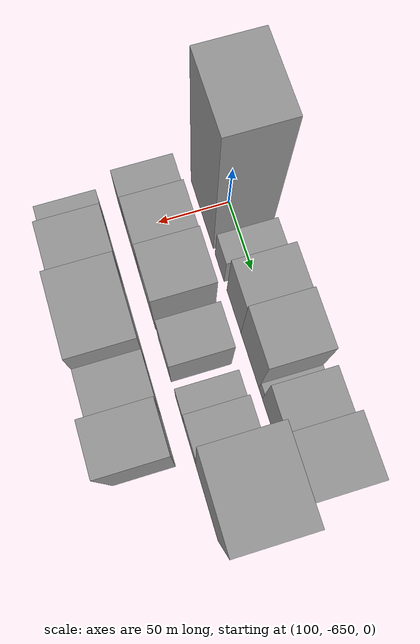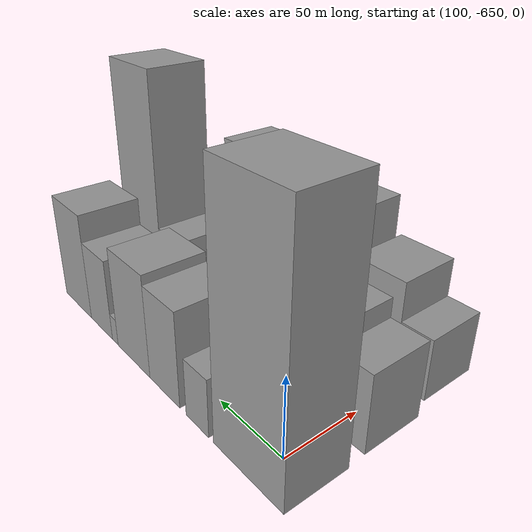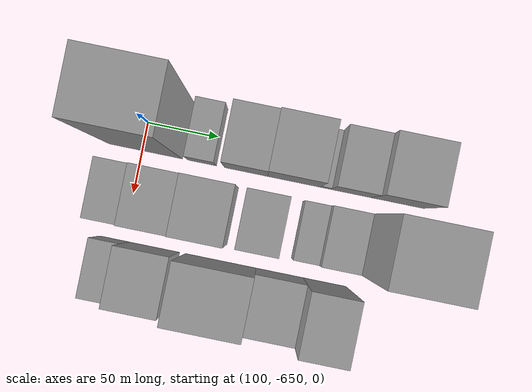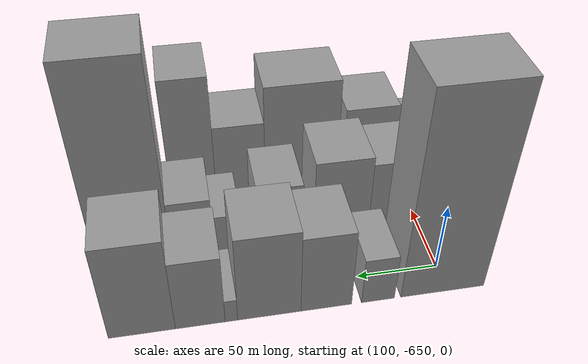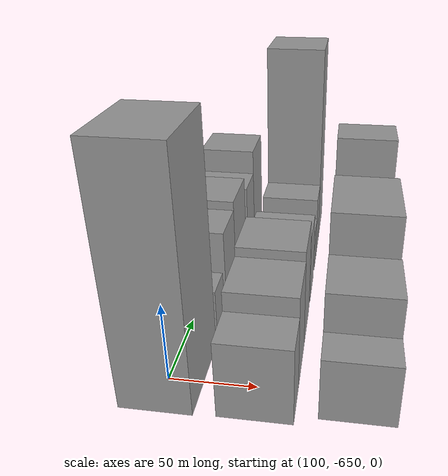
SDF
<sdf version="1.6">
 <world name="default">
  <model name="building_6">
   <static>1</static>
   <pose>100.0000 -647.2399 0 0.000000 0.000000 0.000000</pose>
   <link name="link">
    <pose>0 0 75.00 0 0 0</pose>
    <collision name="collision"><geometry><box><size>40.0000 51.8024 150.0000</size></box></geometry></collision>
    <visual name="visual">
     <cast_shadows>0</cast_shadows>
     <geometry><box><size>40.0000 51.8024 150.0000</size></box></geometry>
     <material>
      <script>
       <uri>model://grey_wall/materials/scripts</uri>
       <uri>model://grey_wall/materials/textures</uri>
       <name>vrc/grey_wall</name>
      </script>
     </material>
    </visual>
   </link>
  </model>
  <model name="building_7">
   <static>1</static>
   <pose>100.0000 -607.3084 0 0.000000 0.000000 0.000000</pose>
   <link name="link">
    <pose>0 0 18.00 0 0 0</pose>
    <collision name="collision"><geometry><box><size>40.0000 20.0606 36.0000</size></box></geometry></collision>
    <visual name="visual">
     <cast_shadows>0</cast_shadows>
     <geometry><box><size>40.0000 20.0606 36.0000</size></box></geometry>
     <material>
      <script>
       <uri>model://grey_wall/materials/scripts</uri>
       <uri>model://grey_wall/materials/textures</uri>
       <name>vrc/grey_wall</name>
      </script>
     </material>
    </visual>
   </link>
  </model>
  <model name="building_8">
   <static>1</static>
   <pose>100.0000 -576.0887 0 0.000000 0.000000 0.000000</pose>
   <link name="link">
    <pose>0 0 30.00 0 0 0</pose>
    <collision name="collision"><geometry><box><size>40.0000 30.3787 60.0000</size></box></geometry></collision>
    <visual name="visual">
     <cast_shadows>0</cast_shadows>
     <geometry><box><size>40.0000 30.3787 60.0000</size></box></geometry>
     <material>
      <script>
       <uri>model://grey_wall/materials/scripts</uri>
       <uri>model://grey_wall/materials/textures</uri>
       <name>vrc/grey_wall</name>
      </script>
     </material>
    </visual>
   </link>
  </model>
  <model name="building_9">
   <static>1</static>
   <pose>100.0000 -542.3237 0 0.000000 0.000000 0.000000</pose>
   <link name="link">
    <pose>0 0 33.00 0 0 0</pose>
    <collision name="collision"><geometry><box><size>40.0000 37.1513 66.0000</size></box></geometry></collision>
    <visual name="visual">
     <cast_shadows>0</cast_shadows>
     <geometry><box><size>40.0000 37.1513 66.0000</size></box></geometry>
     <material>
      <script>
       <uri>model://grey_wall/materials/scripts</uri>
       <uri>model://grey_wall/materials/textures</uri>
       <name>vrc/grey_wall</name>
      </script>
     </material>
    </visual>
   </link>
  </model>
  <model name="building_10">
   <static>1</static>
   <pose>100.0000 -520.1321 0 0.000000 0.000000 0.000000</pose>
   <link name="link">
    <pose>0 0 9.00 0 0 0</pose>
    <collision name="collision"><geometry><box><size>40.0000 7.2320 18.0000</size></box></geometry></collision>
    <visual name="visual">
     <cast_shadows>0</cast_shadows>
     <geometry><box><size>40.0000 7.2320 18.0000</size></box></geometry>
     <material>
      <script>
       <uri>model://grey_wall/materials/scripts</uri>
       <uri>model://grey_wall/materials/textures</uri>
       <name>vrc/grey_wall</name>
      </script>
     </material>
    </visual>
   </link>
  </model>
  <model name="building_11">
   <static>1</static>
   <pose>100.0000 -502.2497 0 0.000000 0.000000 0.000000</pose>
   <link name="link">
    <pose>0 0 27.00 0 0 0</pose>
    <collision name="collision"><geometry><box><size>40.0000 28.5327 54.0000</size></box></geometry></collision>
    <visual name="visual">
     <cast_shadows>0</cast_shadows>
     <geometry><box><size>40.0000 28.5327 54.0000</size></box></geometry>
     <material>
      <script>
       <uri>model://grey_wall/materials/scripts</uri>
       <uri>model://grey_wall/materials/textures</uri>
       <name>vrc/grey_wall</name>
      </script>
     </material>
    </visual>
   </link>
  </model>
  <model name="building_12">
   <static>1</static>
   <pose>100.0000 -469.1289 0 0.000000 0.000000 0.000000</pose>
   <link name="link">
    <pose>0 0 36.00 0 0 0</pose>
    <collision name="collision"><geometry><box><size>40.0000 37.7090 72.0000</size></box></geometry></collision>
    <visual name="visual">
     <cast_shadows>0</cast_shadows>
     <geometry><box><size>40.0000 37.7090 72.0000</size></box></geometry>
     <material>
      <script>
       <uri>model://grey_wall/materials/scripts</uri>
       <uri>model://grey_wall/materials/textures</uri>
       <name>vrc/grey_wall</name>
      </script>
     </material>
    </visual>
   </link>
  </model>
  <model name="building_58">
   <static>1</static>
   <pose>152.0000 -660.0208 0 0.000000 0.000000 0.000000</pose>
   <link name="link">
    <pose>0 0 24.00 0 0 0</pose>
    <collision name="collision"><geometry><box><size>40.0000 24.2662 48.0000</size></box></geometry></collision>
    <visual name="visual">
     <cast_shadows>0</cast_shadows>
     <geometry><box><size>40.0000 24.2662 48.0000</size></box></geometry>
     <material>
      <script>
       <uri>model://grey_wall/materials/scripts</uri>
       <uri>model://grey_wall/materials/textures</uri>
       <name>vrc/grey_wall</name>
      </script>
     </material>
    </visual>
   </link>
  </model>
  <model name="building_59">
   <static>1</static>
   <pose>152.0000 -631.2633 0 0.000000 0.000000 0.000000</pose>
   <link name="link">
    <pose>0 0 30.00 0 0 0</pose>
    <collision name="collision"><geometry><box><size>40.0000 33.2488 60.0000</size></box></geometry></collision>
    <visual name="visual">
     <cast_shadows>0</cast_shadows>
     <geometry><box><size>40.0000 33.2488 60.0000</size></box></geometry>
     <material>
      <script>
       <uri>model://grey_wall/materials/scripts</uri>
       <uri>model://grey_wall/materials/textures</uri>
       <name>vrc/grey_wall</name>
      </script>
     </material>
    </visual>
   </link>
  </model>
  <model name="building_60">
   <static>1</static>
   <pose>152.0000 -596.8617 0 0.000000 0.000000 0.000000</pose>
   <link name="link">
    <pose>0 0 33.00 0 0 0</pose>
    <collision name="collision"><geometry><box><size>40.0000 35.5542 66.0000</size></box></geometry></collision>
    <visual name="visual">
     <cast_shadows>0</cast_shadows>
     <geometry><box><size>40.0000 35.5542 66.0000</size></box></geometry>
     <material>
      <script>
       <uri>model://grey_wall/materials/scripts</uri>
       <uri>model://grey_wall/materials/textures</uri>
       <name>vrc/grey_wall</name>
      </script>
     </material>
    </visual>
   </link>
  </model>
  <model name="building_61">
   <static>1</static>
   <pose>152.0000 -557.7539 0 0.000000 0.000000 0.000000</pose>
   <link name="link">
    <pose>0 0 25.50 0 0 0</pose>
    <collision name="collision"><geometry><box><size>40.0000 28.6614 51.0000</size></box></geometry></collision>
    <visual name="visual">
     <cast_shadows>0</cast_shadows>
     <geometry><box><size>40.0000 28.6614 51.0000</size></box></geometry>
     <material>
      <script>
       <uri>model://grey_wall/materials/scripts</uri>
       <uri>model://grey_wall/materials/textures</uri>
       <name>vrc/grey_wall</name>
      </script>
     </material>
    </visual>
   </link>
  </model>
  <model name="building_62">
   <static>1</static>
   <pose>152.0000 -524.5875 0 0.000000 0.000000 0.000000</pose>
   <link name="link">
    <pose>0 0 16.50 0 0 0</pose>
    <collision name="collision"><geometry><box><size>40.0000 17.6715 33.0000</size></box></geometry></collision>
    <visual name="visual">
     <cast_shadows>0</cast_shadows>
     <geometry><box><size>40.0000 17.6715 33.0000</size></box></geometry>
     <material>
      <script>
       <uri>model://grey_wall/materials/scripts</uri>
       <uri>model://grey_wall/materials/textures</uri>
       <name>vrc/grey_wall</name>
      </script>
     </material>
    </visual>
   </link>
  </model>
  <model name="building_63">
   <static>1</static>
   <pose>152.0000 -502.6047 0 0.000000 0.000000 0.000000</pose>
   <link name="link">
    <pose>0 0 24.00 0 0 0</pose>
    <collision name="collision"><geometry><box><size>40.0000 26.2942 48.0000</size></box></geometry></collision>
    <visual name="visual">
     <cast_shadows>0</cast_shadows>
     <geometry><box><size>40.0000 26.2942 48.0000</size></box></geometry>
     <material>
      <script>
       <uri>model://grey_wall/materials/scripts</uri>
       <uri>model://grey_wall/materials/textures</uri>
       <name>vrc/grey_wall</name>
      </script>
     </material>
    </visual>
   </link>
  </model>
  <model name="building_64">
   <static>1</static>
   <pose>152.0000 -466.3434 0 0.000000 0.000000 0.000000</pose>
   <link name="link">
    <pose>0 0 75.00 0 0 0</pose>
    <collision name="collision"><geometry><box><size>40.0000 46.2285 150.0000</size></box></geometry></collision>
    <visual name="visual">
     <cast_shadows>0</cast_shadows>
     <geometry><box><size>40.0000 46.2285 150.0000</size></box></geometry>
     <material>
      <script>
       <uri>model://grey_wall/materials/scripts</uri>
       <uri>model://grey_wall/materials/textures</uri>
       <name>vrc/grey_wall</name>
      </script>
     </material>
    </visual>
   </link>
  </model>
  <model name="building_112">
   <static>1</static>
   <pose>204.0000 -656.4438 0 0.000000 0.000000 0.000000</pose>
   <link name="link">
    <pose>0 0 19.50 0 0 0</pose>
    <collision name="collision"><geometry><box><size>40.0000 20.6449 39.0000</size></box></geometry></collision>
    <visual name="visual">
     <cast_shadows>0</cast_shadows>
     <geometry><box><size>40.0000 20.6449 39.0000</size></box></geometry>
     <material>
      <script>
       <uri>model://grey_wall/materials/scripts</uri>
       <uri>model://grey_wall/materials/textures</uri>
       <name>vrc/grey_wall</name>
      </script>
     </material>
    </visual>
   </link>
  </model>
  <model name="building_113">
   <static>1</static>
   <pose>204.0000 -628.1800 0 0.000000 0.000000 0.000000</pose>
   <link name="link">
    <pose>0 0 31.50 0 0 0</pose>
    <collision name="collision"><geometry><box><size>40.0000 35.8825 63.0000</size></box></geometry></collision>
    <visual name="visual">
     <cast_shadows>0</cast_shadows>
     <geometry><box><size>40.0000 35.8825 63.0000</size></box></geometry>
     <material>
      <script>
       <uri>model://grey_wall/materials/scripts</uri>
       <uri>model://grey_wall/materials/textures</uri>
       <name>vrc/grey_wall</name>
      </script>
     </material>
    </visual>
   </link>
  </model>
  <model name="building_114">
   <static>1</static>
   <pose>204.0000 -581.2128 0 0.000000 0.000000 0.000000</pose>
   <link name="link">
    <pose>0 0 43.50 0 0 0</pose>
    <collision name="collision"><geometry><box><size>40.0000 50.0518 87.0000</size></box></geometry></collision>
    <visual name="visual">
     <cast_shadows>0</cast_shadows>
     <geometry><box><size>40.0000 50.0518 87.0000</size></box></geometry>
     <material>
      <script>
       <uri>model://grey_wall/materials/scripts</uri>
       <uri>model://grey_wall/materials/textures</uri>
       <name>vrc/grey_wall</name>
      </script>
     </material>
    </visual>
   </link>
  </model>
  <model name="building_115">
   <static>1</static>
   <pose>204.0000 -539.4484 0 0.000000 0.000000 0.000000</pose>
   <link name="link">
    <pose>0 0 30.00 0 0 0</pose>
    <collision name="collision"><geometry><box><size>40.0000 33.4770 60.0000</size></box></geometry></collision>
    <visual name="visual">
     <cast_shadows>0</cast_shadows>
     <geometry><box><size>40.0000 33.4770 60.0000</size></box></geometry>
     <material>
      <script>
       <uri>model://grey_wall/materials/scripts</uri>
       <uri>model://grey_wall/materials/textures</uri>
       <name>vrc/grey_wall</name>
      </script>
     </material>
    </visual>
   </link>
  </model>
  <model name="building_116">
   <static>1</static>
   <pose>204.0000 -507.4795 0 0.000000 0.000000 0.000000</pose>
   <link name="link">
    <pose>0 0 49.50 0 0 0</pose>
    <collision name="collision"><geometry><box><size>40.0000 30.4608 99.0000</size></box></geometry></collision>
    <visual name="visual">
     <cast_shadows>0</cast_shadows>
     <geometry><box><size>40.0000 30.4608 99.0000</size></box></geometry>
     <material>
      <script>
       <uri>model://grey_wall/materials/scripts</uri>
       <uri>model://grey_wall/materials/textures</uri>
       <name>vrc/grey_wall</name>
      </script>
     </material>
    </visual>
   </link>
  </model>
 </world>
</sdf>
